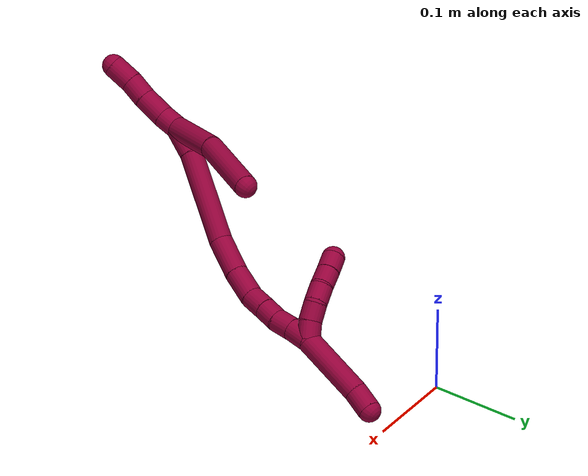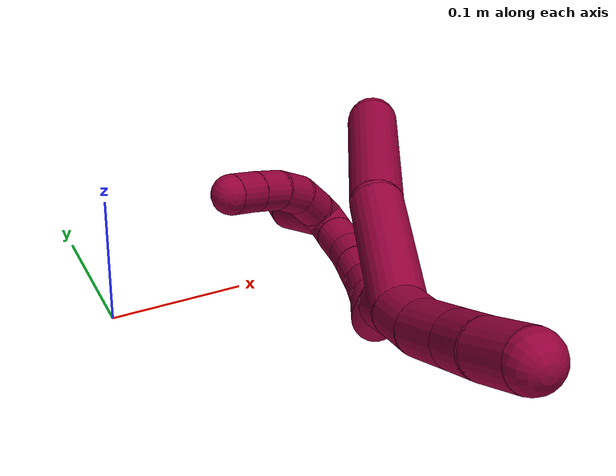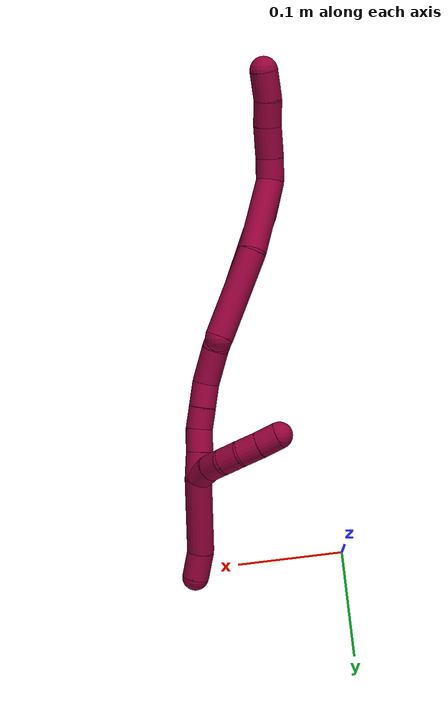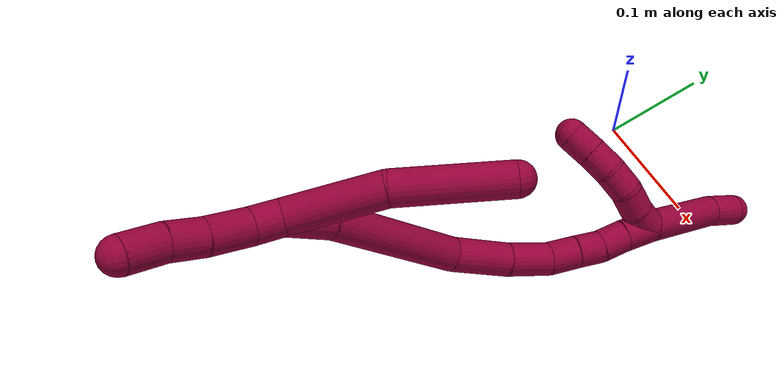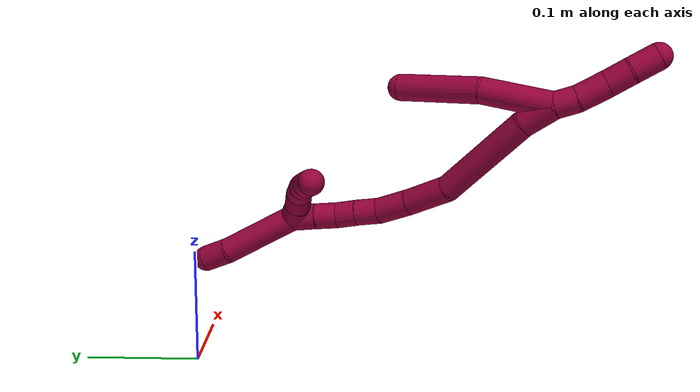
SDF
<sdf version="1.7">
 <world name="default">
  <model name="8">
   <static>0</static>
   <link name="8">
    <collision name="collision-cylinder-e_1_2_8">
     <pose>-0.015445 0.005169 -0.030058 -2.97129 -0.468754 2.45491</pose>
     <geometry><cylinder><radius>0.0125</radius><length>0.068375</length></cylinder></geometry>
     <surface>
      <friction><ode><mu>1.16</mu><mu2>1.16</mu2><slip1>0</slip1><slip2>0</slip2></ode></friction>
      <contact><ode><kp>1e+06</kp><kd>1</kd><max_vel>0</max_vel><min_depth>0.001</min_depth></ode></contact>
     </surface>
    </collision>
    <visual name="visual-cylinder-e_1_2_8">
     <pose>-0.015445 0.005169 -0.030058 -2.97129 -0.468754 2.45491</pose>
     <geometry><cylinder><radius>0.0125</radius><length>0.068375</length></cylinder></geometry>
     <material><ambient>0.584314 0 0.227451 1</ambient></material>
    </visual>
    <collision name="collision-cylinder-e_2_8_6">
     <pose>-0.043147 0.022894 -0.096965 -2.8132 -0.305026 1.4958</pose>
     <geometry><cylinder><radius>0.0125</radius><length>0.081625</length></cylinder></geometry>
     <surface>
      <friction><ode><mu>1.16</mu><mu2>1.16</mu2><slip1>0</slip1><slip2>0</slip2></ode></friction>
      <contact><ode><kp>1e+06</kp><kd>1</kd><max_vel>0</max_vel><min_depth>0.001</min_depth></ode></contact>
     </surface>
    </collision>
    <visual name="visual-cylinder-e_2_8_6">
     <pose>-0.043147 0.022894 -0.096965 -2.8132 -0.305026 1.4958</pose>
     <geometry><cylinder><radius>0.0125</radius><length>0.081625</length></cylinder></geometry>
     <material><ambient>0.584314 0 0.227451 1</ambient></material>
    </visual>
    <collision name="collision-cylinder-e_1_2_9">
     <pose>-0.000134 0.000118 0.010505 -0.011269 -0.012738 7.2e-05</pose>
     <geometry><cylinder><radius>0.0125</radius><length>0.021012</length></cylinder></geometry>
     <surface>
      <friction><ode><mu>1.16</mu><mu2>1.16</mu2><slip1>0</slip1><slip2>0</slip2></ode></friction>
      <contact><ode><kp>1e+06</kp><kd>1</kd><max_vel>0</max_vel><min_depth>0.001</min_depth></ode></contact>
     </surface>
    </collision>
    <visual name="visual-cylinder-e_1_2_9">
     <pose>-0.000134 0.000118 0.010505 -0.011269 -0.012738 7.2e-05</pose>
     <geometry><cylinder><radius>0.0125</radius><length>0.021012</length></cylinder></geometry>
     <material><ambient>0.584314 0 0.227451 1</ambient></material>
    </visual>
    <collision name="collision-cylinder-e_2_9_10">
     <pose>-0.003229 0.000635 0.035288 -0.027911 -0.204427 0.002863</pose>
     <geometry><cylinder><radius>0.0125</radius><length>0.029177</length></cylinder></geometry>
     <surface>
      <friction><ode><mu>1.16</mu><mu2>1.16</mu2><slip1>0</slip1><slip2>0</slip2></ode></friction>
      <contact><ode><kp>1e+06</kp><kd>1</kd><max_vel>0</max_vel><min_depth>0.001</min_depth></ode></contact>
     </surface>
    </collision>
    <visual name="visual-cylinder-e_2_9_10">
     <pose>-0.003229 0.000635 0.035288 -0.027911 -0.204427 0.002863</pose>
     <geometry><cylinder><radius>0.0125</radius><length>0.029177</length></cylinder></geometry>
     <material><ambient>0.584314 0 0.227451 1</ambient></material>
    </visual>
    <collision name="collision-cylinder-e_3_10_11">
     <pose>-0.008883 0.000255 0.060918 0.068512 -0.232381 -0.008</pose>
     <geometry><cylinder><radius>0.0125</radius><length>0.023383</length></cylinder></geometry>
     <surface>
      <friction><ode><mu>1.16</mu><mu2>1.16</mu2><slip1>0</slip1><slip2>0</slip2></ode></friction>
      <contact><ode><kp>1e+06</kp><kd>1</kd><max_vel>0</max_vel><min_depth>0.001</min_depth></ode></contact>
     </surface>
    </collision>
    <visual name="visual-cylinder-e_3_10_11">
     <pose>-0.008883 0.000255 0.060918 0.068512 -0.232381 -0.008</pose>
     <geometry><cylinder><radius>0.0125</radius><length>0.023383</length></cylinder></geometry>
     <material><ambient>0.584314 0 0.227451 1</ambient></material>
    </visual>
    <collision name="collision-cylinder-e_4_11_5">
     <pose>-0.014595 0.000698 0.085075 -0.095076 -0.230523 0.011016</pose>
     <geometry><cylinder><radius>0.0125</radius><length>0.026428</length></cylinder></geometry>
     <surface>
      <friction><ode><mu>1.16</mu><mu2>1.16</mu2><slip1>0</slip1><slip2>0</slip2></ode></friction>
      <contact><ode><kp>1e+06</kp><kd>1</kd><max_vel>0</max_vel><min_depth>0.001</min_depth></ode></contact>
     </surface>
    </collision>
    <visual name="visual-cylinder-e_4_11_5">
     <pose>-0.014595 0.000698 0.085075 -0.095076 -0.230523 0.011016</pose>
     <geometry><cylinder><radius>0.0125</radius><length>0.026428</length></cylinder></geometry>
     <material><ambient>0.584314 0 0.227451 1</ambient></material>
    </visual>
    <collision name="collision-cylinder-e_1_2_12">
     <pose>0.004043 0.004309 -0.015554 -2.87135 0.245468 -1.47373</pose>
     <geometry><cylinder><radius>0.0125</radius><length>0.033277</length></cylinder></geometry>
     <surface>
      <friction><ode><mu>1.16</mu><mu2>1.16</mu2><slip1>0</slip1><slip2>0</slip2></ode></friction>
      <contact><ode><kp>1e+06</kp><kd>1</kd><max_vel>0</max_vel><min_depth>0.001</min_depth></ode></contact>
     </surface>
    </collision>
    <visual name="visual-cylinder-e_1_2_12">
     <pose>0.004043 0.004309 -0.015554 -2.87135 0.245468 -1.47373</pose>
     <geometry><cylinder><radius>0.0125</radius><length>0.033277</length></cylinder></geometry>
     <material><ambient>0.584314 0 0.227451 1</ambient></material>
    </visual>
    <collision name="collision-cylinder-e_2_12_13">
     <pose>0.02738 0.026949 -0.073994 -2.73766 0.392228 -1.5406</pose>
     <geometry><cylinder><radius>0.0125</radius><length>0.100945</length></cylinder></geometry>
     <surface>
      <friction><ode><mu>1.16</mu><mu2>1.16</mu2><slip1>0</slip1><slip2>0</slip2></ode></friction>
      <contact><ode><kp>1e+06</kp><kd>1</kd><max_vel>0</max_vel><min_depth>0.001</min_depth></ode></contact>
     </surface>
    </collision>
    <visual name="visual-cylinder-e_2_12_13">
     <pose>0.02738 0.026949 -0.073994 -2.73766 0.392228 -1.5406</pose>
     <geometry><cylinder><radius>0.0125</radius><length>0.100945</length></cylinder></geometry>
     <material><ambient>0.584314 0 0.227451 1</ambient></material>
    </visual>
    <collision name="collision-cylinder-e_3_13_14">
     <pose>0.048173 0.053348 -0.137259 -2.76463 0.068361 -0.35476</pose>
     <geometry><cylinder><radius>0.0125</radius><length>0.04394</length></cylinder></geometry>
     <surface>
      <friction><ode><mu>1.16</mu><mu2>1.16</mu2><slip1>0</slip1><slip2>0</slip2></ode></friction>
      <contact><ode><kp>1e+06</kp><kd>1</kd><max_vel>0</max_vel><min_depth>0.001</min_depth></ode></contact>
     </surface>
    </collision>
    <visual name="visual-cylinder-e_3_13_14">
     <pose>0.048173 0.053348 -0.137259 -2.76463 0.068361 -0.35476</pose>
     <geometry><cylinder><radius>0.0125</radius><length>0.04394</length></cylinder></geometry>
     <material><ambient>0.584314 0 0.227451 1</ambient></material>
    </visual>
    <collision name="collision-cylinder-e_4_14_15">
     <pose>0.050056 0.066087 -0.173648 -2.85773 0.02292 -0.160065</pose>
     <geometry><cylinder><radius>0.0125</radius><length>0.033362</length></cylinder></geometry>
     <surface>
      <friction><ode><mu>1.16</mu><mu2>1.16</mu2><slip1>0</slip1><slip2>0</slip2></ode></friction>
      <contact><ode><kp>1e+06</kp><kd>1</kd><max_vel>0</max_vel><min_depth>0.001</min_depth></ode></contact>
     </surface>
    </collision>
    <visual name="visual-cylinder-e_4_14_15">
     <pose>0.050056 0.066087 -0.173648 -2.85773 0.02292 -0.160065</pose>
     <geometry><cylinder><radius>0.0125</radius><length>0.033362</length></cylinder></geometry>
     <material><ambient>0.584314 0 0.227451 1</ambient></material>
    </visual>
    <collision name="collision-cylinder-e_5_15_16">
     <pose>0.048571 0.072094 -0.200845 -3.0227 -0.164296 1.8898</pose>
     <geometry><cylinder><radius>0.0125</radius><length>0.022843</length></cylinder></geometry>
     <surface>
      <friction><ode><mu>1.16</mu><mu2>1.16</mu2><slip1>0</slip1><slip2>0</slip2></ode></friction>
      <contact><ode><kp>1e+06</kp><kd>1</kd><max_vel>0</max_vel><min_depth>0.001</min_depth></ode></contact>
     </surface>
    </collision>
    <visual name="visual-cylinder-e_5_15_16">
     <pose>0.048571 0.072094 -0.200845 -3.0227 -0.164296 1.8898</pose>
     <geometry><cylinder><radius>0.0125</radius><length>0.022843</length></cylinder></geometry>
     <material><ambient>0.584314 0 0.227451 1</ambient></material>
    </visual>
    <collision name="collision-cylinder-e_6_16_17">
     <pose>0.045471 0.074751 -0.222019 -3.0101 -0.121635 1.49273</pose>
     <geometry><cylinder><radius>0.0125</radius><length>0.020296</length></cylinder></geometry>
     <surface>
      <friction><ode><mu>1.16</mu><mu2>1.16</mu2><slip1>0</slip1><slip2>0</slip2></ode></friction>
      <contact><ode><kp>1e+06</kp><kd>1</kd><max_vel>0</max_vel><min_depth>0.001</min_depth></ode></contact>
     </surface>
    </collision>
    <visual name="visual-cylinder-e_6_16_17">
     <pose>0.045471 0.074751 -0.222019 -3.0101 -0.121635 1.49273</pose>
     <geometry><cylinder><radius>0.0125</radius><length>0.020296</length></cylinder></geometry>
     <material><ambient>0.584314 0 0.227451 1</ambient></material>
    </visual>
    <collision name="collision-cylinder-e_7_17_18">
     <pose>0.042065 0.075521 -0.242612 3.08976 -0.201986 -2.64076</pose>
     <geometry><cylinder><radius>0.0125</radius><length>0.021683</length></cylinder></geometry>
     <surface>
      <friction><ode><mu>1.16</mu><mu2>1.16</mu2><slip1>0</slip1><slip2>0</slip2></ode></friction>
      <contact><ode><kp>1e+06</kp><kd>1</kd><max_vel>0</max_vel><min_depth>0.001</min_depth></ode></contact>
     </surface>
    </collision>
    <visual name="visual-cylinder-e_7_17_18">
     <pose>0.042065 0.075521 -0.242612 3.08976 -0.201986 -2.64076</pose>
     <geometry><cylinder><radius>0.0125</radius><length>0.021683</length></cylinder></geometry>
     <material><ambient>0.584314 0 0.227451 1</ambient></material>
    </visual>
    <collision name="collision-cylinder-e_8_18_1">
     <pose>0.037722 0.075184 -0.264844 -3.1233 -0.184355 2.9443</pose>
     <geometry><cylinder><radius>0.0125</radius><length>0.023655</length></cylinder></geometry>
     <surface>
      <friction><ode><mu>1.16</mu><mu2>1.16</mu2><slip1>0</slip1><slip2>0</slip2></ode></friction>
      <contact><ode><kp>1e+06</kp><kd>1</kd><max_vel>0</max_vel><min_depth>0.001</min_depth></ode></contact>
     </surface>
    </collision>
    <visual name="visual-cylinder-e_8_18_1">
     <pose>0.037722 0.075184 -0.264844 -3.1233 -0.184355 2.9443</pose>
     <geometry><cylinder><radius>0.0125</radius><length>0.023655</length></cylinder></geometry>
     <material><ambient>0.584314 0 0.227451 1</ambient></material>
    </visual>
    <collision name="collision-cylinder-e_1_1_19">
     <pose>0.030613 0.068868 -0.270728 0.849489 -0.516735 -0.237921</pose>
     <geometry><cylinder><radius>0.0125</radius><length>0.02</length></cylinder></geometry>
     <surface>
      <friction><ode><mu>1.16</mu><mu2>1.16</mu2><slip1>0</slip1><slip2>0</slip2></ode></friction>
      <contact><ode><kp>1e+06</kp><kd>1</kd><max_vel>0</max_vel><min_depth>0.001</min_depth></ode></contact>
     </surface>
    </collision>
    <visual name="visual-cylinder-e_1_1_19">
     <pose>0.030613 0.068868 -0.270728 0.849489 -0.516735 -0.237921</pose>
     <geometry><cylinder><radius>0.0125</radius><length>0.02</length></cylinder></geometry>
     <material><ambient>0.584314 0 0.227451 1</ambient></material>
    </visual>
    <collision name="collision-cylinder-e_2_19_20">
     <pose>0.020448 0.054835 -0.260938 1.07601 -0.549753 -0.333444</pose>
     <geometry><cylinder><radius>0.0125</radius><length>0.02</length></cylinder></geometry>
     <surface>
      <friction><ode><mu>1.16</mu><mu2>1.16</mu2><slip1>0</slip1><slip2>0</slip2></ode></friction>
      <contact><ode><kp>1e+06</kp><kd>1</kd><max_vel>0</max_vel><min_depth>0.001</min_depth></ode></contact>
     </surface>
    </collision>
    <visual name="visual-cylinder-e_2_19_20">
     <pose>0.020448 0.054835 -0.260938 1.07601 -0.549753 -0.333444</pose>
     <geometry><cylinder><radius>0.0125</radius><length>0.02</length></cylinder></geometry>
     <material><ambient>0.584314 0 0.227451 1</ambient></material>
    </visual>
    <collision name="collision-cylinder-e_3_20_21">
     <pose>0.012828 0.038678 -0.252486 1.10009 -0.241876 -0.148763</pose>
     <geometry><cylinder><radius>0.0125</radius><length>0.02</length></cylinder></geometry>
     <surface>
      <friction><ode><mu>1.16</mu><mu2>1.16</mu2><slip1>0</slip1><slip2>0</slip2></ode></friction>
      <contact><ode><kp>1e+06</kp><kd>1</kd><max_vel>0</max_vel><min_depth>0.001</min_depth></ode></contact>
     </surface>
    </collision>
    <visual name="visual-cylinder-e_3_20_21">
     <pose>0.012828 0.038678 -0.252486 1.10009 -0.241876 -0.148763</pose>
     <geometry><cylinder><radius>0.0125</radius><length>0.02</length></cylinder></geometry>
     <material><ambient>0.584314 0 0.227451 1</ambient></material>
    </visual>
    <collision name="collision-cylinder-e_4_21_22">
     <pose>0.010155 0.021005 -0.243774 1.12519 -0.027763 -0.017507</pose>
     <geometry><cylinder><radius>0.0125</radius><length>0.02</length></cylinder></geometry>
     <surface>
      <friction><ode><mu>1.16</mu><mu2>1.16</mu2><slip1>0</slip1><slip2>0</slip2></ode></friction>
      <contact><ode><kp>1e+06</kp><kd>1</kd><max_vel>0</max_vel><min_depth>0.001</min_depth></ode></contact>
     </surface>
    </collision>
    <visual name="visual-cylinder-e_4_21_22">
     <pose>0.010155 0.021005 -0.243774 1.12519 -0.027763 -0.017507</pose>
     <geometry><cylinder><radius>0.0125</radius><length>0.02</length></cylinder></geometry>
     <material><ambient>0.584314 0 0.227451 1</ambient></material>
    </visual>
    <collision name="collision-cylinder-e_5_22_4">
     <pose>0.009876 0.00313 -0.234818 1.08744 -0.000146 -8.8e-05</pose>
     <geometry><cylinder><radius>0.0125</radius><length>0.02</length></cylinder></geometry>
     <surface>
      <friction><ode><mu>1.16</mu><mu2>1.16</mu2><slip1>0</slip1><slip2>0</slip2></ode></friction>
      <contact><ode><kp>1e+06</kp><kd>1</kd><max_vel>0</max_vel><min_depth>0.001</min_depth></ode></contact>
     </surface>
    </collision>
    <visual name="visual-cylinder-e_5_22_4">
     <pose>0.009876 0.00313 -0.234818 1.08744 -0.000146 -8.8e-05</pose>
     <geometry><cylinder><radius>0.0125</radius><length>0.02</length></cylinder></geometry>
     <material><ambient>0.584314 0 0.227451 1</ambient></material>
    </visual>
    <collision name="collision-cylinder-e_1_1_23">
     <pose>0.042989 0.076182 -0.312652 -3.11989 0.202632 -2.92888</pose>
     <geometry><cylinder><radius>0.0125</radius><length>0.073895</length></cylinder></geometry>
     <surface>
      <friction><ode><mu>1.16</mu><mu2>1.16</mu2><slip1>0</slip1><slip2>0</slip2></ode></friction>
      <contact><ode><kp>1e+06</kp><kd>1</kd><max_vel>0</max_vel><min_depth>0.001</min_depth></ode></contact>
     </surface>
    </collision>
    <visual name="visual-cylinder-e_1_1_23">
     <pose>0.042989 0.076182 -0.312652 -3.11989 0.202632 -2.92888</pose>
     <geometry><cylinder><radius>0.0125</radius><length>0.073895</length></cylinder></geometry>
     <material><ambient>0.584314 0 0.227451 1</ambient></material>
    </visual>
    <collision name="collision-cylinder-e_2_23_3">
     <pose>0.051407 0.079711 -0.361558 -2.9292 0.075293 -0.679284</pose>
     <geometry><cylinder><radius>0.0125</radius><length>0.026105</length></cylinder></geometry>
     <surface>
      <friction><ode><mu>1.16</mu><mu2>1.16</mu2><slip1>0</slip1><slip2>0</slip2></ode></friction>
      <contact><ode><kp>1e+06</kp><kd>1</kd><max_vel>0</max_vel><min_depth>0.001</min_depth></ode></contact>
     </surface>
    </collision>
    <visual name="visual-cylinder-e_2_23_3">
     <pose>0.051407 0.079711 -0.361558 -2.9292 0.075293 -0.679284</pose>
     <geometry><cylinder><radius>0.0125</radius><length>0.026105</length></cylinder></geometry>
     <material><ambient>0.584314 0 0.227451 1</ambient></material>
    </visual>
    <collision name="collision-sphere-3">
     <pose>0.052388 0.082455 -0.374282 0 -0 0</pose>
     <geometry><sphere><radius>0.0125</radius></sphere></geometry>
     <surface>
      <friction><ode><mu>1.16</mu><mu2>1.16</mu2><slip1>0</slip1><slip2>0</slip2></ode></friction>
      <contact><ode><kp>1e+06</kp><kd>1</kd><max_vel>0</max_vel><min_depth>0.001</min_depth></ode></contact>
     </surface>
    </collision>
    <visual name="visual-sphere-3">
     <pose>0.052388 0.082455 -0.374282 0 -0 0</pose>
     <geometry><sphere><radius>0.0125</radius></sphere></geometry>
     <material><ambient>0.584314 0 0.227451 1</ambient></material>
    </visual>
    <collision name="collision-sphere-23">
     <pose>0.050425 0.076968 -0.348835 0 -0 0</pose>
     <geometry><sphere><radius>0.0125</radius></sphere></geometry>
     <surface>
      <friction><ode><mu>1.16</mu><mu2>1.16</mu2><slip1>0</slip1><slip2>0</slip2></ode></friction>
      <contact><ode><kp>1e+06</kp><kd>1</kd><max_vel>0</max_vel><min_depth>0.001</min_depth></ode></contact>
     </surface>
    </collision>
    <visual name="visual-sphere-23">
     <pose>0.050425 0.076968 -0.348835 0 -0 0</pose>
     <geometry><sphere><radius>0.0125</radius></sphere></geometry>
     <material><ambient>0.584314 0 0.227451 1</ambient></material>
    </visual>
    <collision name="collision-sphere-4">
     <pose>0.009875 -0.005724 -0.230171 0 -0 0</pose>
     <geometry><sphere><radius>0.0125</radius></sphere></geometry>
     <surface>
      <friction><ode><mu>1.16</mu><mu2>1.16</mu2><slip1>0</slip1><slip2>0</slip2></ode></friction>
      <contact><ode><kp>1e+06</kp><kd>1</kd><max_vel>0</max_vel><min_depth>0.001</min_depth></ode></contact>
     </surface>
    </collision>
    <visual name="visual-sphere-4">
     <pose>0.009875 -0.005724 -0.230171 0 -0 0</pose>
     <geometry><sphere><radius>0.0125</radius></sphere></geometry>
     <material><ambient>0.584314 0 0.227451 1</ambient></material>
    </visual>
    <collision name="collision-sphere-22">
     <pose>0.009878 0.011985 -0.239466 0 -0 0</pose>
     <geometry><sphere><radius>0.0125</radius></sphere></geometry>
     <surface>
      <friction><ode><mu>1.16</mu><mu2>1.16</mu2><slip1>0</slip1><slip2>0</slip2></ode></friction>
      <contact><ode><kp>1e+06</kp><kd>1</kd><max_vel>0</max_vel><min_depth>0.001</min_depth></ode></contact>
     </surface>
    </collision>
    <visual name="visual-sphere-22">
     <pose>0.009878 0.011985 -0.239466 0 -0 0</pose>
     <geometry><sphere><radius>0.0125</radius></sphere></geometry>
     <material><ambient>0.584314 0 0.227451 1</ambient></material>
    </visual>
    <collision name="collision-sphere-21">
     <pose>0.010433 0.030025 -0.248083 0 -0 0</pose>
     <geometry><sphere><radius>0.0125</radius></sphere></geometry>
     <surface>
      <friction><ode><mu>1.16</mu><mu2>1.16</mu2><slip1>0</slip1><slip2>0</slip2></ode></friction>
      <contact><ode><kp>1e+06</kp><kd>1</kd><max_vel>0</max_vel><min_depth>0.001</min_depth></ode></contact>
     </surface>
    </collision>
    <visual name="visual-sphere-21">
     <pose>0.010433 0.030025 -0.248083 0 -0 0</pose>
     <geometry><sphere><radius>0.0125</radius></sphere></geometry>
     <material><ambient>0.584314 0 0.227451 1</ambient></material>
    </visual>
    <collision name="collision-sphere-20">
     <pose>0.015223 0.047331 -0.256889 0 -0 0</pose>
     <geometry><sphere><radius>0.0125</radius></sphere></geometry>
     <surface>
      <friction><ode><mu>1.16</mu><mu2>1.16</mu2><slip1>0</slip1><slip2>0</slip2></ode></friction>
      <contact><ode><kp>1e+06</kp><kd>1</kd><max_vel>0</max_vel><min_depth>0.001</min_depth></ode></contact>
     </surface>
    </collision>
    <visual name="visual-sphere-20">
     <pose>0.015223 0.047331 -0.256889 0 -0 0</pose>
     <geometry><sphere><radius>0.0125</radius></sphere></geometry>
     <material><ambient>0.584314 0 0.227451 1</ambient></material>
    </visual>
    <collision name="collision-sphere-11">
     <pose>-0.011576 -0.000524 0.072268 0 -0 0</pose>
     <geometry><sphere><radius>0.0125</radius></sphere></geometry>
     <surface>
      <friction><ode><mu>1.16</mu><mu2>1.16</mu2><slip1>0</slip1><slip2>0</slip2></ode></friction>
      <contact><ode><kp>1e+06</kp><kd>1</kd><max_vel>0</max_vel><min_depth>0.001</min_depth></ode></contact>
     </surface>
    </collision>
    <visual name="visual-sphere-11">
     <pose>-0.011576 -0.000524 0.072268 0 -0 0</pose>
     <geometry><sphere><radius>0.0125</radius></sphere></geometry>
     <material><ambient>0.584314 0 0.227451 1</ambient></material>
    </visual>
    <collision name="collision-sphere-10">
     <pose>-0.006191 0.001034 0.049568 0 -0 0</pose>
     <geometry><sphere><radius>0.0125</radius></sphere></geometry>
     <surface>
      <friction><ode><mu>1.16</mu><mu2>1.16</mu2><slip1>0</slip1><slip2>0</slip2></ode></friction>
      <contact><ode><kp>1e+06</kp><kd>1</kd><max_vel>0</max_vel><min_depth>0.001</min_depth></ode></contact>
     </surface>
    </collision>
    <visual name="visual-sphere-10">
     <pose>-0.006191 0.001034 0.049568 0 -0 0</pose>
     <geometry><sphere><radius>0.0125</radius></sphere></geometry>
     <material><ambient>0.584314 0 0.227451 1</ambient></material>
    </visual>
    <collision name="collision-sphere-6">
     <pose>-0.055404 0.035449 -0.133814 0 -0 0</pose>
     <geometry><sphere><radius>0.0125</radius></sphere></geometry>
     <surface>
      <friction><ode><mu>1.16</mu><mu2>1.16</mu2><slip1>0</slip1><slip2>0</slip2></ode></friction>
      <contact><ode><kp>1e+06</kp><kd>1</kd><max_vel>0</max_vel><min_depth>0.001</min_depth></ode></contact>
     </surface>
    </collision>
    <visual name="visual-sphere-6">
     <pose>-0.055404 0.035449 -0.133814 0 -0 0</pose>
     <geometry><sphere><radius>0.0125</radius></sphere></geometry>
     <material><ambient>0.584314 0 0.227451 1</ambient></material>
    </visual>
    <collision name="collision-sphere-9">
     <pose>-0.000268 0.000237 0.021009 0 -0 0</pose>
     <geometry><sphere><radius>0.0125</radius></sphere></geometry>
     <surface>
      <friction><ode><mu>1.16</mu><mu2>1.16</mu2><slip1>0</slip1><slip2>0</slip2></ode></friction>
      <contact><ode><kp>1e+06</kp><kd>1</kd><max_vel>0</max_vel><min_depth>0.001</min_depth></ode></contact>
     </surface>
    </collision>
    <visual name="visual-sphere-9">
     <pose>-0.000268 0.000237 0.021009 0 -0 0</pose>
     <geometry><sphere><radius>0.0125</radius></sphere></geometry>
     <material><ambient>0.584314 0 0.227451 1</ambient></material>
    </visual>
    <collision name="collision-sphere-2">
     <geometry><sphere><radius>0.0125</radius></sphere></geometry>
     <surface>
      <friction><ode><mu>1.16</mu><mu2>1.16</mu2><slip1>0</slip1><slip2>0</slip2></ode></friction>
      <contact><ode><kp>1e+06</kp><kd>1</kd><max_vel>0</max_vel><min_depth>0.001</min_depth></ode></contact>
     </surface>
    </collision>
    <visual name="visual-sphere-2">
     <geometry><sphere><radius>0.0125</radius></sphere></geometry>
     <material><ambient>0.584314 0 0.227451 1</ambient></material>
    </visual>
    <collision name="collision-sphere-19">
     <pose>0.025673 0.062339 -0.264986 0 -0 0</pose>
     <geometry><sphere><radius>0.0125</radius></sphere></geometry>
     <surface>
      <friction><ode><mu>1.16</mu><mu2>1.16</mu2><slip1>0</slip1><slip2>0</slip2></ode></friction>
      <contact><ode><kp>1e+06</kp><kd>1</kd><max_vel>0</max_vel><min_depth>0.001</min_depth></ode></contact>
     </surface>
    </collision>
    <visual name="visual-sphere-19">
     <pose>0.025673 0.062339 -0.264986 0 -0 0</pose>
     <geometry><sphere><radius>0.0125</radius></sphere></geometry>
     <material><ambient>0.584314 0 0.227451 1</ambient></material>
    </visual>
    <collision name="collision-sphere-8">
     <pose>-0.03089 0.010338 -0.060117 0 -0 0</pose>
     <geometry><sphere><radius>0.0125</radius></sphere></geometry>
     <surface>
      <friction><ode><mu>1.16</mu><mu2>1.16</mu2><slip1>0</slip1><slip2>0</slip2></ode></friction>
      <contact><ode><kp>1e+06</kp><kd>1</kd><max_vel>0</max_vel><min_depth>0.001</min_depth></ode></contact>
     </surface>
    </collision>
    <visual name="visual-sphere-8">
     <pose>-0.03089 0.010338 -0.060117 0 -0 0</pose>
     <geometry><sphere><radius>0.0125</radius></sphere></geometry>
     <material><ambient>0.584314 0 0.227451 1</ambient></material>
    </visual>
    <collision name="collision-sphere-5">
     <pose>-0.017614 0.001919 0.097881 0 -0 0</pose>
     <geometry><sphere><radius>0.0125</radius></sphere></geometry>
     <surface>
      <friction><ode><mu>1.16</mu><mu2>1.16</mu2><slip1>0</slip1><slip2>0</slip2></ode></friction>
      <contact><ode><kp>1e+06</kp><kd>1</kd><max_vel>0</max_vel><min_depth>0.001</min_depth></ode></contact>
     </surface>
    </collision>
    <visual name="visual-sphere-5">
     <pose>-0.017614 0.001919 0.097881 0 -0 0</pose>
     <geometry><sphere><radius>0.0125</radius></sphere></geometry>
     <material><ambient>0.584314 0 0.227451 1</ambient></material>
    </visual>
    <collision name="collision-sphere-12">
     <pose>0.008087 0.008617 -0.031108 0 -0 0</pose>
     <geometry><sphere><radius>0.0125</radius></sphere></geometry>
     <surface>
      <friction><ode><mu>1.16</mu><mu2>1.16</mu2><slip1>0</slip1><slip2>0</slip2></ode></friction>
      <contact><ode><kp>1e+06</kp><kd>1</kd><max_vel>0</max_vel><min_depth>0.001</min_depth></ode></contact>
     </surface>
    </collision>
    <visual name="visual-sphere-12">
     <pose>0.008087 0.008617 -0.031108 0 -0 0</pose>
     <geometry><sphere><radius>0.0125</radius></sphere></geometry>
     <material><ambient>0.584314 0 0.227451 1</ambient></material>
    </visual>
    <collision name="collision-sphere-13">
     <pose>0.046673 0.04528 -0.11688 0 -0 0</pose>
     <geometry><sphere><radius>0.0125</radius></sphere></geometry>
     <surface>
      <friction><ode><mu>1.16</mu><mu2>1.16</mu2><slip1>0</slip1><slip2>0</slip2></ode></friction>
      <contact><ode><kp>1e+06</kp><kd>1</kd><max_vel>0</max_vel><min_depth>0.001</min_depth></ode></contact>
     </surface>
    </collision>
    <visual name="visual-sphere-13">
     <pose>0.046673 0.04528 -0.11688 0 -0 0</pose>
     <geometry><sphere><radius>0.0125</radius></sphere></geometry>
     <material><ambient>0.584314 0 0.227451 1</ambient></material>
    </visual>
    <collision name="collision-sphere-14">
     <pose>0.049674 0.061416 -0.157639 0 -0 0</pose>
     <geometry><sphere><radius>0.0125</radius></sphere></geometry>
     <surface>
      <friction><ode><mu>1.16</mu><mu2>1.16</mu2><slip1>0</slip1><slip2>0</slip2></ode></friction>
      <contact><ode><kp>1e+06</kp><kd>1</kd><max_vel>0</max_vel><min_depth>0.001</min_depth></ode></contact>
     </surface>
    </collision>
    <visual name="visual-sphere-14">
     <pose>0.049674 0.061416 -0.157639 0 -0 0</pose>
     <geometry><sphere><radius>0.0125</radius></sphere></geometry>
     <material><ambient>0.584314 0 0.227451 1</ambient></material>
    </visual>
    <collision name="collision-sphere-15">
     <pose>0.050439 0.070757 -0.189657 0 -0 0</pose>
     <geometry><sphere><radius>0.0125</radius></sphere></geometry>
     <surface>
      <friction><ode><mu>1.16</mu><mu2>1.16</mu2><slip1>0</slip1><slip2>0</slip2></ode></friction>
      <contact><ode><kp>1e+06</kp><kd>1</kd><max_vel>0</max_vel><min_depth>0.001</min_depth></ode></contact>
     </surface>
    </collision>
    <visual name="visual-sphere-15">
     <pose>0.050439 0.070757 -0.189657 0 -0 0</pose>
     <geometry><sphere><radius>0.0125</radius></sphere></geometry>
     <material><ambient>0.584314 0 0.227451 1</ambient></material>
    </visual>
    <collision name="collision-sphere-16">
     <pose>0.046702 0.07343 -0.212033 0 -0 0</pose>
     <geometry><sphere><radius>0.0125</radius></sphere></geometry>
     <surface>
      <friction><ode><mu>1.16</mu><mu2>1.16</mu2><slip1>0</slip1><slip2>0</slip2></ode></friction>
      <contact><ode><kp>1e+06</kp><kd>1</kd><max_vel>0</max_vel><min_depth>0.001</min_depth></ode></contact>
     </surface>
    </collision>
    <visual name="visual-sphere-16">
     <pose>0.046702 0.07343 -0.212033 0 -0 0</pose>
     <geometry><sphere><radius>0.0125</radius></sphere></geometry>
     <material><ambient>0.584314 0 0.227451 1</ambient></material>
    </visual>
    <collision name="collision-sphere-17">
     <pose>0.04424 0.076072 -0.232005 0 -0 0</pose>
     <geometry><sphere><radius>0.0125</radius></sphere></geometry>
     <surface>
      <friction><ode><mu>1.16</mu><mu2>1.16</mu2><slip1>0</slip1><slip2>0</slip2></ode></friction>
      <contact><ode><kp>1e+06</kp><kd>1</kd><max_vel>0</max_vel><min_depth>0.001</min_depth></ode></contact>
     </surface>
    </collision>
    <visual name="visual-sphere-17">
     <pose>0.04424 0.076072 -0.232005 0 -0 0</pose>
     <geometry><sphere><radius>0.0125</radius></sphere></geometry>
     <material><ambient>0.584314 0 0.227451 1</ambient></material>
    </visual>
    <collision name="collision-sphere-18">
     <pose>0.03989 0.074971 -0.253219 0 -0 0</pose>
     <geometry><sphere><radius>0.0125</radius></sphere></geometry>
     <surface>
      <friction><ode><mu>1.16</mu><mu2>1.16</mu2><slip1>0</slip1><slip2>0</slip2></ode></friction>
      <contact><ode><kp>1e+06</kp><kd>1</kd><max_vel>0</max_vel><min_depth>0.001</min_depth></ode></contact>
     </surface>
    </collision>
    <visual name="visual-sphere-18">
     <pose>0.03989 0.074971 -0.253219 0 -0 0</pose>
     <geometry><sphere><radius>0.0125</radius></sphere></geometry>
     <material><ambient>0.584314 0 0.227451 1</ambient></material>
    </visual>
    <collision name="collision-sphere-1">
     <pose>0.035554 0.075397 -0.276469 0 -0 0</pose>
     <geometry><sphere><radius>0.0125</radius></sphere></geometry>
     <surface>
      <friction><ode><mu>1.16</mu><mu2>1.16</mu2><slip1>0</slip1><slip2>0</slip2></ode></friction>
      <contact><ode><kp>1e+06</kp><kd>1</kd><max_vel>0</max_vel><min_depth>0.001</min_depth></ode></contact>
     </surface>
    </collision>
    <visual name="visual-sphere-1">
     <pose>0.035554 0.075397 -0.276469 0 -0 0</pose>
     <geometry><sphere><radius>0.0125</radius></sphere></geometry>
     <material><ambient>0.584314 0 0.227451 1</ambient></material>
    </visual>
    <inertial>
     <pose>0.015267 0.036934 -0.137699 0 -0 0</pose>
     <mass>0.75</mass>
     <inertia>
      <ixx>-6.1e-05</ixx>
      <ixy>0</ixy>
      <ixz>0</ixz>
      <iyy>4.3e-05</iyy>
      <iyz>0</iyz>
      <izz>-9.3e-05</izz>
     </inertia>
    </inertial>
   </link>
   <pose>0.032115 -0.318192 0.227748 -0.557597 1.22517 -2.26929</pose>
  </model>
 </world>
</sdf>
